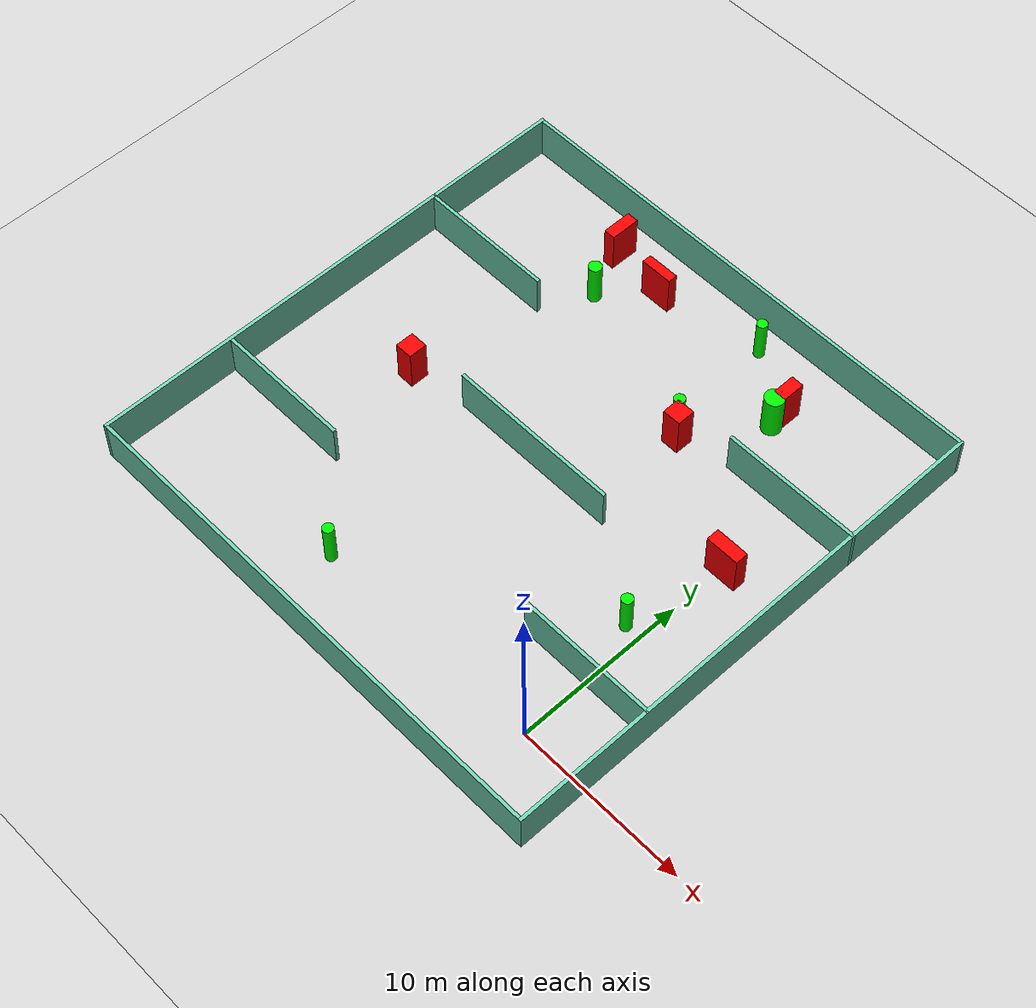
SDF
<sdf version="1.7">
 <world name="default">
  <light name="sun" type="directional">
   <pose>0 0 10 0 -0 0</pose>
   <diffuse>0.8 0.8 0.8 1</diffuse>
   <specular>0.2 0.2 0.2 1</specular>
   <attenuation>
    <range>1000</range>
    <constant>0.9</constant>
    <linear>0.01</linear>
    <quadratic>0.001</quadratic>
   </attenuation>
   <direction>-0.5 0.1 -0.9</direction>
   <spot><inner_angle>0</inner_angle><outer_angle>0</outer_angle><falloff>0</falloff></spot>
  </light>
  <model name="ground_plane">
   <static>1</static>
   <link name="link">
    <collision name="collision">
     <geometry><plane><normal>0 0 1</normal><size>100 100</size></plane></geometry>
     <surface>
      <contact><collide_bitmask>65535</collide_bitmask></contact>
      <friction><ode><mu>100</mu><mu2>50</mu2></ode></friction>
     </surface>
    </collision>
    <visual name="visual">
     <cast_shadows>0</cast_shadows>
     <geometry><plane><normal>0 0 1</normal><size>100 100</size></plane></geometry>
     <material>
      <script><uri>file://media/materials/scripts/gazebo.material</uri><name>Gazebo/Grey</name></script>
     </material>
    </visual>
   </link>
  </model>
  <gravity>0 0 -9.8</gravity>
  <magnetic_field>6e-06 2.3e-05 -4.2e-05</magnetic_field>
  <atmosphere type="adiabatic"/>
  <physics type="ode">
   <max_step_size>0.001</max_step_size>
   <real_time_factor>1</real_time_factor>
   <real_time_update_rate>1000</real_time_update_rate>
  </physics>
  <scene><ambient>0.4 0.4 0.4 1</ambient><background>0.7 0.7 0.7 1</background><shadows>1</shadows></scene>
  <spherical_coordinates>
   <surface_model>EARTH_WGS84</surface_model>
   <latitude_deg>0</latitude_deg>
   <longitude_deg>0</longitude_deg>
   <elevation>0</elevation>
   <heading_deg>0</heading_deg>
  </spherical_coordinates>
  <model name="my_base_walls">
   <link name="Wall_10">
    <collision name="Wall_10_Collision">
     <geometry><box><size>8.2 0.2 2.5</size></box></geometry>
     <pose>0 0 1.25 0 -0 0</pose>
    </collision>
    <visual name="Wall_10_Visual">
     <pose>0 0 1.25 0 -0 0</pose>
     <geometry><box><size>8.2 0.2 2.5</size></box></geometry>
     <material>
      <script><uri>file://media/materials/scripts/gazebo.material</uri><name>Gazebo/Grey</name></script>
      <ambient>0.435294 0.796078 0.67451 1</ambient>
     </material>
     <meta><layer>0</layer></meta>
    </visual>
    <pose>-11 -7 0 0 -0 0</pose>
   </link>
   <link name="Wall_12">
    <collision name="Wall_12_Collision">
     <geometry><box><size>8.2 0.2 2.5</size></box></geometry>
     <pose>0 0 1.25 0 -0 0</pose>
    </collision>
    <visual name="Wall_12_Visual">
     <pose>0 0 1.25 0 -0 0</pose>
     <geometry><box><size>8.2 0.2 2.5</size></box></geometry>
     <material>
      <script><uri>file://media/materials/scripts/gazebo.material</uri><name>Gazebo/Grey</name></script>
      <ambient>0.435294 0.796078 0.67451 1</ambient>
     </material>
     <meta><layer>0</layer></meta>
    </visual>
    <pose>-11 7 0 0 -0 0</pose>
   </link>
   <link name="Wall_14">
    <collision name="Wall_14_Collision">
     <geometry><box><size>8.2 0.2 2.5</size></box></geometry>
     <pose>0 0 1.25 0 -0 0</pose>
    </collision>
    <visual name="Wall_14_Visual">
     <pose>0 0 1.25 0 -0 0</pose>
     <geometry><box><size>8.2 0.2 2.5</size></box></geometry>
     <material>
      <script><uri>file://media/materials/scripts/gazebo.material</uri><name>Gazebo/Grey</name></script>
      <ambient>0.435294 0.796078 0.67451 1</ambient>
     </material>
     <meta><layer>0</layer></meta>
    </visual>
    <pose>11 7 0 0 -0 3.14159</pose>
   </link>
   <link name="Wall_16">
    <collision name="Wall_16_Collision">
     <geometry><box><size>10.2 0.2 2.5</size></box></geometry>
     <pose>0 0 1.25 0 -0 0</pose>
    </collision>
    <visual name="Wall_16_Visual">
     <pose>0 0 1.25 0 -0 0</pose>
     <geometry><box><size>10.2 0.2 2.5</size></box></geometry>
     <material>
      <script><uri>file://media/materials/scripts/gazebo.material</uri><name>Gazebo/Grey</name></script>
      <ambient>0.435294 0.796078 0.67451 1</ambient>
     </material>
     <meta><layer>0</layer></meta>
    </visual>
    <pose>0 0 0 0 -0 3.14159</pose>
   </link>
   <link name="Wall_2">
    <collision name="Wall_2_Collision">
     <geometry><box><size>30.2 0.2 2.5</size></box></geometry>
     <pose>0 0 1.25 0 -0 0</pose>
    </collision>
    <visual name="Wall_2_Visual">
     <pose>0 0 1.25 0 -0 0</pose>
     <geometry><box><size>30.2 0.2 2.5</size></box></geometry>
     <material>
      <script><uri>file://media/materials/scripts/gazebo.material</uri><name>Gazebo/Grey</name></script>
      <ambient>0.435294 0.796078 0.67451 1</ambient>
     </material>
     <meta><layer>0</layer></meta>
    </visual>
    <pose>0 -15 0 0 -0 3.14159</pose>
   </link>
   <link name="Wall_3">
    <collision name="Wall_3_Collision">
     <geometry><box><size>30.2 0.2 2.5</size></box></geometry>
     <pose>0 0 1.25 0 -0 0</pose>
    </collision>
    <visual name="Wall_3_Visual">
     <pose>0 0 1.25 0 -0 0</pose>
     <geometry><box><size>30.2 0.2 2.5</size></box></geometry>
     <material>
      <script><uri>file://media/materials/scripts/gazebo.material</uri><name>Gazebo/Grey</name></script>
      <ambient>0.435294 0.796078 0.67451 1</ambient>
     </material>
     <meta><layer>0</layer></meta>
    </visual>
    <pose>-15 0 0 0 -0 1.5708</pose>
   </link>
   <link name="Wall_4">
    <collision name="Wall_4_Collision">
     <geometry><box><size>30.2 0.2 2.5</size></box></geometry>
     <pose>0 0 1.25 0 -0 0</pose>
    </collision>
    <visual name="Wall_4_Visual">
     <pose>0 0 1.25 0 -0 0</pose>
     <geometry><box><size>30.2 0.2 2.5</size></box></geometry>
     <material>
      <script><uri>file://media/materials/scripts/gazebo.material</uri><name>Gazebo/Grey</name></script>
      <ambient>0.435294 0.796078 0.67451 1</ambient>
     </material>
     <meta><layer>0</layer></meta>
    </visual>
    <pose>0 15 0 0 -0 0</pose>
   </link>
   <link name="Wall_6">
    <collision name="Wall_6_Collision">
     <geometry><box><size>30.2 0.2 2.5</size></box></geometry>
     <pose>0 0 1.25 0 -0 0</pose>
    </collision>
    <visual name="Wall_6_Visual">
     <pose>0 0 1.25 0 -0 0</pose>
     <geometry><box><size>30.2 0.2 2.5</size></box></geometry>
     <material>
      <script><uri>file://media/materials/scripts/gazebo.material</uri><name>Gazebo/Grey</name></script>
      <ambient>0.435294 0.796078 0.67451 1</ambient>
     </material>
     <meta><layer>0</layer></meta>
    </visual>
    <pose>15 0 0 0 -0 1.5708</pose>
   </link>
   <link name="Wall_8">
    <collision name="Wall_8_Collision">
     <geometry><box><size>8.2 0.2 2.5</size></box></geometry>
     <pose>0 0 1.25 0 -0 0</pose>
    </collision>
    <visual name="Wall_8_Visual">
     <pose>0 0 1.25 0 -0 0</pose>
     <geometry><box><size>8.2 0.2 2.5</size></box></geometry>
     <material>
      <script><uri>file://media/materials/scripts/gazebo.material</uri><name>Gazebo/Grey</name></script>
      <ambient>0.435294 0.796078 0.67451 1</ambient>
     </material>
     <meta><layer>0</layer></meta>
    </visual>
    <pose>11 -7 0 0 -0 3.14159</pose>
   </link>
   <static>1</static>
   <pose>-11 11 0 0 -0 0</pose>
  </model>
  <model name="cylinder1">
   <static>1</static>
   <link name="link">
    <inertial>
     <mass>1</mass>
     <inertia><ixx>0.5</ixx><ixy>0</ixy><ixz>0</ixz><iyy>0.5</iyy><iyz>0</iyz><izz>1</izz></inertia>
    </inertial>
    <collision name="collision">
     <geometry><cylinder><radius>0.31290291496382105</radius><length>2.5</length></cylinder></geometry>
    </collision>
    <visual name="visual">
     <geometry><cylinder><radius>0.31290291496382105</radius><length>2.5</length></cylinder></geometry>
     <material>
      <ambient>0 1 0 1</ambient>
      <diffuse>0 1 0 1</diffuse>
      <specular>0.1 0.1 0.1 1</specular>
      <emissive>0 0 0 0</emissive>
     </material>
    </visual>
   </link>
   <pose>-13.74190272583159 -0.0333275124868071 1.25 0 0 0</pose>
  </model>
  <model name="cylinder2">
   <static>1</static>
   <link name="link">
    <inertial>
     <mass>1</mass>
     <inertia><ixx>0.5</ixx><ixy>0</ixy><ixz>0</ixz><iyy>0.5</iyy><iyz>0</iyz><izz>1</izz></inertia>
    </inertial>
    <collision name="collision">
     <geometry><cylinder><radius>0.31990423018829867</radius><length>2.5</length></cylinder></geometry>
    </collision>
    <visual name="visual">
     <geometry><cylinder><radius>0.31990423018829867</radius><length>2.5</length></cylinder></geometry>
     <material>
      <ambient>0 1 0 1</ambient>
      <diffuse>0 1 0 1</diffuse>
      <specular>0.1 0.1 0.1 1</specular>
      <emissive>0 0 0 0</emissive>
     </material>
    </visual>
   </link>
   <pose>-0.9348758422058872 7.607078819577975 1.25 0 0 0</pose>
  </model>
  <model name="cylinder3">
   <static>1</static>
   <link name="link">
    <inertial>
     <mass>1</mass>
     <inertia><ixx>0.5</ixx><ixy>0</ixy><ixz>0</ixz><iyy>0.5</iyy><iyz>0</iyz><izz>1</izz></inertia>
    </inertial>
    <collision name="collision">
     <geometry><cylinder><radius>0.3151795137257463</radius><length>2.5</length></cylinder></geometry>
    </collision>
    <visual name="visual">
     <geometry><cylinder><radius>0.3151795137257463</radius><length>2.5</length></cylinder></geometry>
     <material>
      <ambient>0 1 0 1</ambient>
      <diffuse>0 1 0 1</diffuse>
      <specular>0.1 0.1 0.1 1</specular>
      <emissive>0 0 0 0</emissive>
     </material>
    </visual>
   </link>
   <pose>-7.50100512932212 17.845848512377014 1.25 0 0 0</pose>
  </model>
  <model name="cylinder4">
   <static>1</static>
   <link name="link">
    <inertial>
     <mass>1</mass>
     <inertia><ixx>0.5</ixx><ixy>0</ixy><ixz>0</ixz><iyy>0.5</iyy><iyz>0</iyz><izz>1</izz></inertia>
    </inertial>
    <collision name="collision">
     <geometry><cylinder><radius>0.37753190745390713</radius><length>2.5</length></cylinder></geometry>
    </collision>
    <visual name="visual">
     <geometry><cylinder><radius>0.37753190745390713</radius><length>2.5</length></cylinder></geometry>
     <material>
      <ambient>0 1 0 1</ambient>
      <diffuse>0 1 0 1</diffuse>
      <specular>0.1 0.1 0.1 1</specular>
      <emissive>0 0 0 0</emissive>
     </material>
    </visual>
   </link>
   <pose>-16.56976556742017 20.817179443649774 1.25 0 0 0</pose>
  </model>
  <model name="cylinder5">
   <static>1</static>
   <link name="link">
    <inertial>
     <mass>1</mass>
     <inertia><ixx>0.5</ixx><ixy>0</ixy><ixz>0</ixz><iyy>0.5</iyy><iyz>0</iyz><izz>1</izz></inertia>
    </inertial>
    <collision name="collision">
     <geometry><cylinder><radius>0.3040804579031878</radius><length>2.5</length></cylinder></geometry>
    </collision>
    <visual name="visual">
     <geometry><cylinder><radius>0.3040804579031878</radius><length>2.5</length></cylinder></geometry>
     <material>
      <ambient>0 1 0 1</ambient>
      <diffuse>0 1 0 1</diffuse>
      <specular>0.1 0.1 0.1 1</specular>
      <emissive>0 0 0 0</emissive>
     </material>
    </visual>
   </link>
   <pose>-7.935276473731996 24.34801728750115 1.25 0 0 0</pose>
  </model>
  <model name="cylinder6">
   <static>1</static>
   <link name="link">
    <inertial>
     <mass>1</mass>
     <inertia><ixx>0.5</ixx><ixy>0</ixy><ixz>0</ixz><iyy>0.5</iyy><iyz>0</iyz><izz>1</izz></inertia>
    </inertial>
    <collision name="collision">
     <geometry><cylinder><radius>0.5644036030655113</radius><length>2.5</length></cylinder></geometry>
    </collision>
    <visual name="visual">
     <geometry><cylinder><radius>0.5644036030655113</radius><length>2.5</length></cylinder></geometry>
     <material>
      <ambient>0 1 0 1</ambient>
      <diffuse>0 1 0 1</diffuse>
      <specular>0.1 0.1 0.1 1</specular>
      <emissive>0 0 0 0</emissive>
     </material>
    </visual>
   </link>
   <pose>-4.253865554565358 21.343378016376803 1.25 0 0 0</pose>
  </model>
  <model name="box1">
   <static>1</static>
   <link name="link">
    <inertial>
     <mass>1</mass>
     <inertia><ixx>0.083</ixx><ixy>0</ixy><ixz>0</ixz><iyy>0.083</iyy><iyz>0</iyz><izz>0.083</izz></inertia>
    </inertial>
    <collision name="collision">
     <geometry><box><size>0.6838253840875297 1.7500660730810715 2.5</size></box></geometry>
    </collision>
    <visual name="visual">
     <geometry><box><size>0.6838253840875297 1.7500660730810715 2.5</size></box></geometry>
     <material>
      <ambient>1 0 0 1</ambient>
      <diffuse>1 0 0 1</diffuse>
      <specular>0.1 0.1 0.1 1</specular>
      <emissive>0 0 0 0</emissive>
     </material>
    </visual>
    <sensor name="my_contact" type="contact">
     <contact><collision>box_collision</collision><topic>__default_topic__</topic></contact>
    </sensor>
   </link>
   <pose>-17.626500532317625 23.762893843958278 1.25 0 0 0</pose>
  </model>
  <model name="box2">
   <static>1</static>
   <link name="link">
    <inertial>
     <mass>1</mass>
     <inertia><ixx>0.083</ixx><ixy>0</ixy><ixz>0</ixz><iyy>0.083</iyy><iyz>0</iyz><izz>0.083</izz></inertia>
    </inertial>
    <collision name="collision">
     <geometry><box><size>1.9624337776483545 0.7542875479647673 2.5</size></box></geometry>
    </collision>
    <visual name="visual">
     <geometry><box><size>1.9624337776483545 0.7542875479647673 2.5</size></box></geometry>
     <material>
      <ambient>1 0 0 1</ambient>
      <diffuse>1 0 0 1</diffuse>
      <specular>0.1 0.1 0.1 1</specular>
      <emissive>0 0 0 0</emissive>
     </material>
    </visual>
    <sensor name="my_contact" type="contact">
     <contact><collision>box_collision</collision><topic>__default_topic__</topic></contact>
    </sensor>
   </link>
   <pose>0.2819212321489637 13.162563808745901 1.25 0 0 0</pose>
  </model>
  <model name="box3">
   <static>1</static>
   <link name="link">
    <inertial>
     <mass>1</mass>
     <inertia><ixx>0.083</ixx><ixy>0</ixy><ixz>0</ixz><iyy>0.083</iyy><iyz>0</iyz><izz>0.083</izz></inertia>
    </inertial>
    <collision name="collision">
     <geometry><box><size>1.0770947124646835 1.0618904696716314 2.5</size></box></geometry>
    </collision>
    <visual name="visual">
     <geometry><box><size>1.0770947124646835 1.0618904696716314 2.5</size></box></geometry>
     <material>
      <ambient>1 0 0 1</ambient>
      <diffuse>1 0 0 1</diffuse>
      <specular>0.1 0.1 0.1 1</specular>
      <emissive>0 0 0 0</emissive>
     </material>
    </visual>
    <sensor name="my_contact" type="contact">
     <contact><collision>box_collision</collision><topic>__default_topic__</topic></contact>
    </sensor>
   </link>
   <pose>-6.960805220243898 17.222947390146686 1.25 0 0 0</pose>
  </model>
  <model name="box4">
   <static>1</static>
   <link name="link">
    <inertial>
     <mass>1</mass>
     <inertia><ixx>0.083</ixx><ixy>0</ixy><ixz>0</ixz><iyy>0.083</iyy><iyz>0</iyz><izz>0.083</izz></inertia>
    </inertial>
    <collision name="collision">
     <geometry><box><size>0.740117213582862 1.3208906896784969 2.5</size></box></geometry>
    </collision>
    <visual name="visual">
     <geometry><box><size>0.740117213582862 1.3208906896784969 2.5</size></box></geometry>
     <material>
      <ambient>1 0 0 1</ambient>
      <diffuse>1 0 0 1</diffuse>
      <specular>0.1 0.1 0.1 1</specular>
      <emissive>0 0 0 0</emissive>
     </material>
    </visual>
    <sensor name="my_contact" type="contact">
     <contact><collision>box_collision</collision><topic>__default_topic__</topic></contact>
    </sensor>
   </link>
   <pose>-4.17596211578531 22.277465790253803 1.25 0 0 0</pose>
  </model>
  <model name="box5">
   <static>1</static>
   <link name="link">
    <inertial>
     <mass>1</mass>
     <inertia><ixx>0.083</ixx><ixy>0</ixy><ixz>0</ixz><iyy>0.083</iyy><iyz>0</iyz><izz>0.083</izz></inertia>
    </inertial>
    <collision name="collision">
     <geometry><box><size>1.9094161132321439 0.5589358049943427 2.5</size></box></geometry>
    </collision>
    <visual name="visual">
     <geometry><box><size>1.9094161132321439 0.5589358049943427 2.5</size></box></geometry>
     <material>
      <ambient>1 0 0 1</ambient>
      <diffuse>1 0 0 1</diffuse>
      <specular>0.1 0.1 0.1 1</specular>
      <emissive>0 0 0 0</emissive>
     </material>
    </visual>
    <sensor name="my_contact" type="contact">
     <contact><collision>box_collision</collision><topic>__default_topic__</topic></contact>
    </sensor>
   </link>
   <pose>-14.1442077333069 23.141778874202412 1.25 0 0 0</pose>
  </model>
  <model name="box6">
   <static>1</static>
   <link name="link">
    <inertial>
     <mass>1</mass>
     <inertia><ixx>0.083</ixx><ixy>0</ixy><ixz>0</ixz><iyy>0.083</iyy><iyz>0</iyz><izz>0.083</izz></inertia>
    </inertial>
    <collision name="collision">
     <geometry><box><size>1.0466896971951893 1.0837666167164457 2.5</size></box></geometry>
    </collision>
    <visual name="visual">
     <geometry><box><size>1.0466896971951893 1.0837666167164457 2.5</size></box></geometry>
     <material>
      <ambient>1 0 0 1</ambient>
      <diffuse>1 0 0 1</diffuse>
      <specular>0.1 0.1 0.1 1</specular>
      <emissive>0 0 0 0</emissive>
     </material>
    </visual>
    <sensor name="my_contact" type="contact">
     <contact><collision>box_collision</collision><topic>__default_topic__</topic></contact>
    </sensor>
   </link>
   <pose>-19.308829716518375 10.362642380716403 1.25 0 0 0</pose>
  </model>
 </world>
</sdf>
